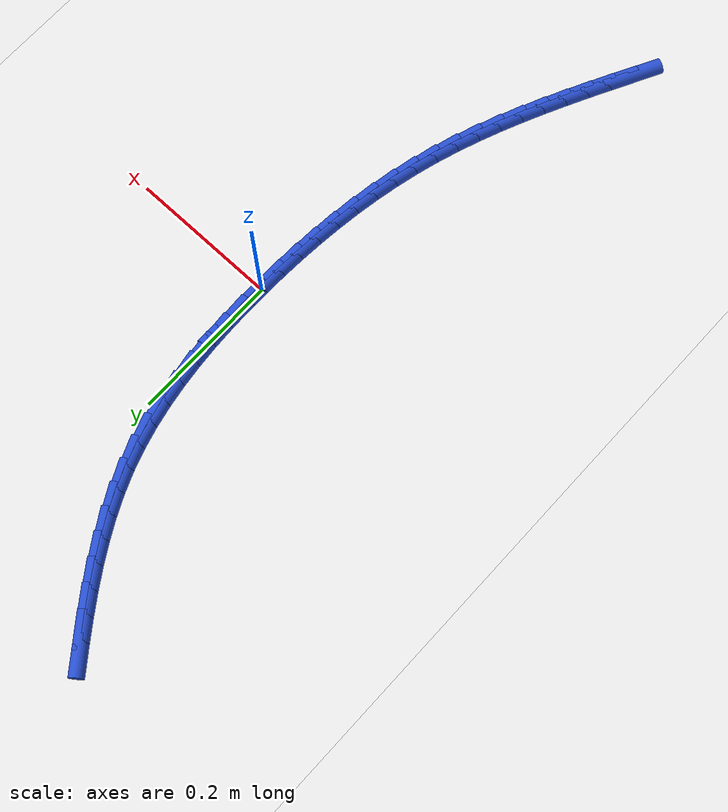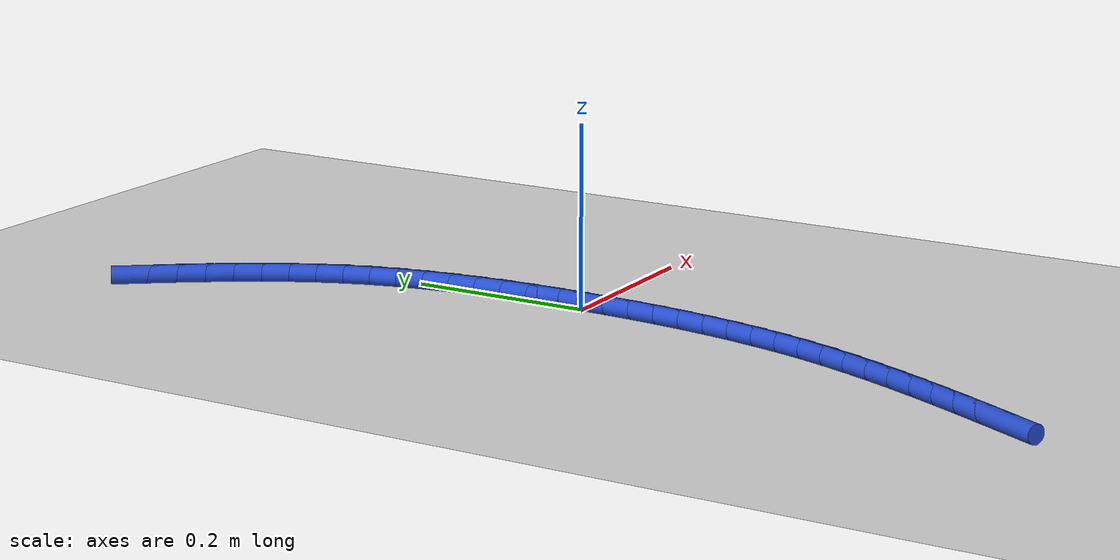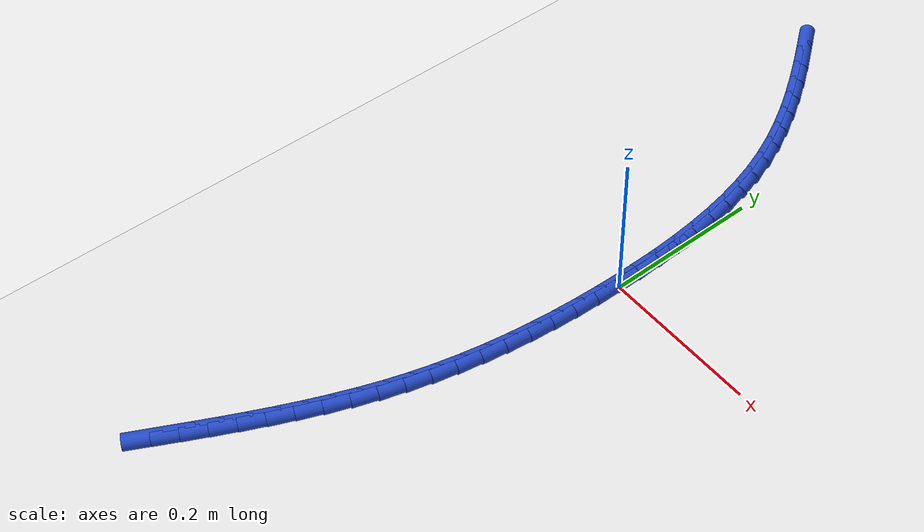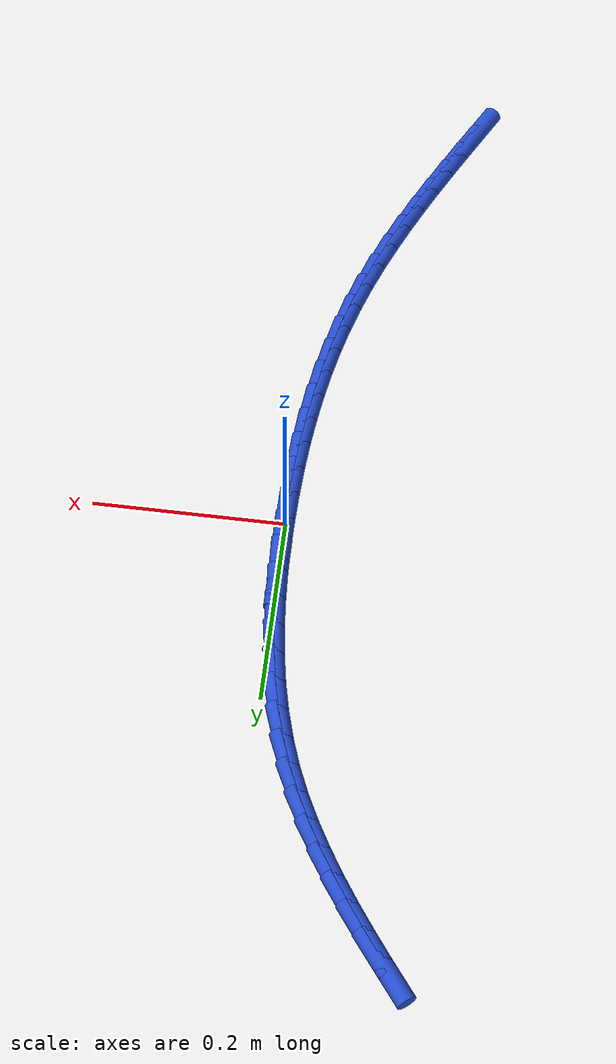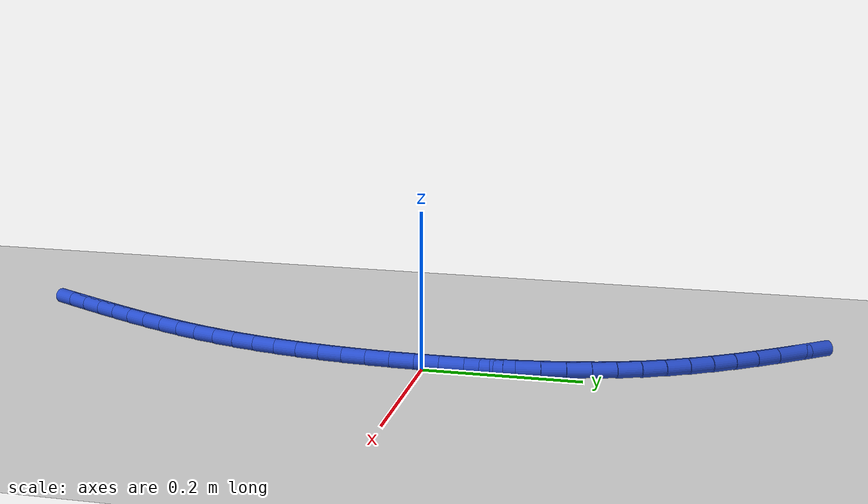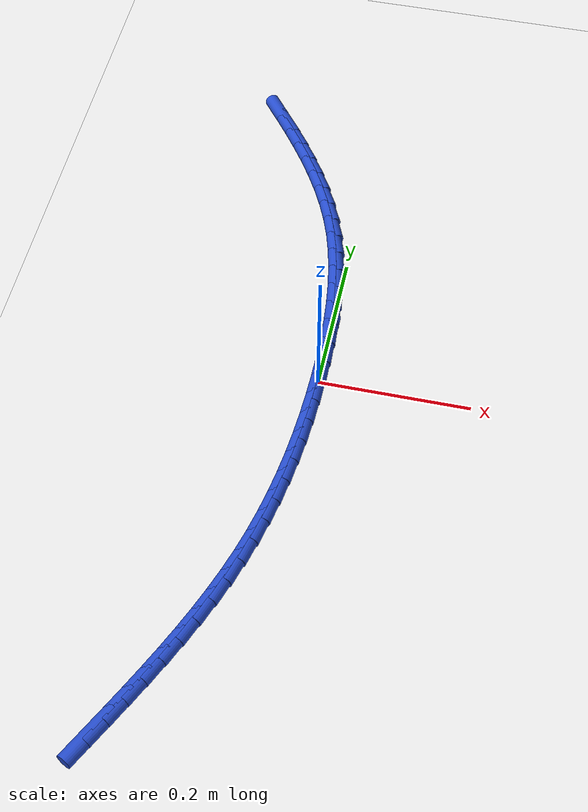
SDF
<sdf version="1.6">
 <world name="default">
  <model name="ground_plane">
   <static>1</static>
   <link name="link">
    <collision name="collision">
     <geometry><plane><normal>0 0 1</normal><size>100 100</size></plane></geometry>
     <surface><friction><ode><mu>100</mu><mu2>50</mu2></ode></friction></surface>
    </collision>
    <visual name="visual">
     <cast_shadows>0</cast_shadows>
     <geometry><plane><normal>0 0 1</normal><size>100 100</size></plane></geometry>
     <material>
      <script><uri>file://media/materials/scripts/gazebo.material</uri><name>Gazebo/WhiteGlow</name></script>
     </material>
    </visual>
   </link>
  </model>
  <model name="line">
   <link name="link_0">
    <pose>1.6479873021779667e-17 0.0 0.01 0 1.57 1.5675752540527133</pose>
    <collision name="collision">
     <geometry><cylinder><radius>0.01</radius><length>0.08</length></cylinder></geometry>
    </collision>
    <visual name="visual">
     <material>
      <script><name>Gazebo/Blue</name><uri>file://media/materials/scripts/gazebo.material</uri></script>
     </material>
     <geometry><cylinder><radius>0.01</radius><length>0.08</length></cylinder></geometry>
    </visual>
   </link>
   <link name="link_1">
    <pose>0.0001011087600426013 0.0313896699816783 0.01 0 1.57 -1.5484223017014453</pose>
    <collision name="collision">
     <geometry><cylinder><radius>0.01</radius><length>0.08</length></cylinder></geometry>
    </collision>
    <visual name="visual">
     <material>
      <script><name>Gazebo/Blue</name><uri>file://media/materials/scripts/gazebo.material</uri></script>
     </material>
     <geometry><cylinder><radius>0.01</radius><length>0.08</length></cylinder></geometry>
    </visual>
   </link>
   <link name="link_2">
    <pose>-0.0006017148387606974 0.06279690738424935 0.01 0 1.57 -1.5186276149639046</pose>
    <collision name="collision">
     <geometry><cylinder><radius>0.01</radius><length>0.08</length></cylinder></geometry>
    </collision>
    <visual name="visual">
     <material>
      <script><name>Gazebo/Blue</name><uri>file://media/materials/scripts/gazebo.material</uri></script>
     </material>
     <geometry><cylinder><radius>0.01</radius><length>0.08</length></cylinder></geometry>
    </visual>
   </link>
   <link name="link_3">
    <pose>-0.0022372068500118043 0.09411851721863422 0.01 0 1.57 -1.484386432581348</pose>
    <collision name="collision">
     <geometry><cylinder><radius>0.01</radius><length>0.08</length></cylinder></geometry>
    </collision>
    <visual name="visual">
     <material>
      <script><name>Gazebo/Blue</name><uri>file://media/materials/scripts/gazebo.material</uri></script>
     </material>
     <geometry><cylinder><radius>0.01</radius><length>0.08</length></cylinder></geometry>
    </visual>
   </link>
   <link name="link_4">
    <pose>-0.004934103327312637 0.12525130449575378 0.01 0 1.57 -1.4454217284860233</pose>
    <collision name="collision">
     <geometry><cylinder><radius>0.01</radius><length>0.08</length></cylinder></geometry>
    </collision>
    <visual name="visual">
     <material>
      <script><name>Gazebo/Blue</name><uri>file://media/materials/scripts/gazebo.material</uri></script>
     </material>
     <geometry><cylinder><radius>0.01</radius><length>0.08</length></cylinder></geometry>
    </visual>
   </link>
   <link name="link_5">
    <pose>-0.008821140324265125 0.15609207422652904 0.01 0 1.57 -1.4014432492507192</pose>
    <collision name="collision">
     <geometry><cylinder><radius>0.01</radius><length>0.08</length></cylinder></geometry>
    </collision>
    <visual name="visual">
     <material>
      <script><name>Gazebo/Blue</name><uri>file://media/materials/scripts/gazebo.material</uri></script>
     </material>
     <geometry><cylinder><radius>0.01</radius><length>0.08</length></cylinder></geometry>
    </visual>
   </link>
   <link name="link_6">
    <pose>-0.01402705389447119 0.18653763142188096 0.01 0 1.57 -1.3521718016188053</pose>
    <collision name="collision">
     <geometry><cylinder><radius>0.01</radius><length>0.08</length></cylinder></geometry>
    </collision>
    <visual name="visual">
     <material>
      <script><name>Gazebo/Blue</name><uri>file://media/materials/scripts/gazebo.material</uri></script>
     </material>
     <geometry><cylinder><radius>0.01</radius><length>0.08</length></cylinder></geometry>
    </visual>
   </link>
   <link name="link_7">
    <pose>-0.020680580091532754 0.21648478109273056 0.01 0 1.57 -1.2973730357408915</pose>
    <collision name="collision">
     <geometry><cylinder><radius>0.01</radius><length>0.08</length></cylinder></geometry>
    </collision>
    <visual name="visual">
     <material>
      <script><name>Gazebo/Blue</name><uri>file://media/materials/scripts/gazebo.material</uri></script>
     </material>
     <geometry><cylinder><radius>0.01</radius><length>0.08</length></cylinder></geometry>
    </visual>
   </link>
   <link name="link_8">
    <pose>-0.028910454969051737 0.24583032824999868 0.01 0 1.57 -1.2369107856390804</pose>
    <collision name="collision">
     <geometry><cylinder><radius>0.01</radius><length>0.08</length></cylinder></geometry>
    </collision>
    <visual name="visual">
     <material>
      <script><name>Gazebo/Blue</name><uri>file://media/materials/scripts/gazebo.material</uri></script>
     </material>
     <geometry><cylinder><radius>0.01</radius><length>0.08</length></cylinder></geometry>
    </visual>
   </link>
   <link name="link_9">
    <pose>-0.038845181325287824 0.2744712218505244 0.01 0 1.57 -1.1738996928790446</pose>
    <collision name="collision">
     <geometry><cylinder><radius>0.01</radius><length>0.08</length></cylinder></geometry>
    </collision>
    <visual name="visual">
     <material>
      <script><name>Gazebo/Blue</name><uri>file://media/materials/scripts/gazebo.material</uri></script>
     </material>
     <geometry><cylinder><radius>0.01</radius><length>0.08</length></cylinder></geometry>
    </visual>
   </link>
   <link name="link_10">
    <pose>-0.05053215916598173 0.3023544607912741 0.01 0 1.57 -1.1163393704208906</pose>
    <collision name="collision">
     <geometry><cylinder><radius>0.01</radius><length>0.08</length></cylinder></geometry>
    </collision>
    <visual name="visual">
     <material>
      <script><name>Gazebo/Blue</name><uri>file://media/materials/scripts/gazebo.material</uri></script>
     </material>
     <geometry><cylinder><radius>0.01</radius><length>0.08</length></cylinder></geometry>
    </visual>
   </link>
   <link name="link_11">
    <pose>-0.06381906367342541 0.3295502976223272 0.01 0 1.57 -1.0657681846072646</pose>
    <collision name="collision">
     <geometry><cylinder><radius>0.01</radius><length>0.08</length></cylinder></geometry>
    </collision>
    <visual name="visual">
     <material>
      <script><name>Gazebo/Blue</name><uri>file://media/materials/scripts/gazebo.material</uri></script>
     </material>
     <geometry><cylinder><radius>0.01</radius><length>0.08</length></cylinder></geometry>
    </visual>
   </link>
   <link name="link_12">
    <pose>-0.07852337432375618 0.3561476191878261 0.01 0 1.57 -1.0223385522766313</pose>
    <collision name="collision">
     <geometry><cylinder><radius>0.01</radius><length>0.08</length></cylinder></geometry>
    </collision>
    <visual name="visual">
     <material>
      <script><name>Gazebo/Blue</name><uri>file://media/materials/scripts/gazebo.material</uri></script>
     </material>
     <geometry><cylinder><radius>0.01</radius><length>0.08</length></cylinder></geometry>
    </visual>
   </link>
   <link name="link_13">
    <pose>-0.09446257059311147 0.38223531233191366 0.01 0 1.57 -0.9860303867190535</pose>
    <collision name="collision">
     <geometry><cylinder><radius>0.01</radius><length>0.08</length></cylinder></geometry>
    </collision>
    <visual name="visual">
     <material>
      <script><name>Gazebo/Blue</name><uri>file://media/materials/scripts/gazebo.material</uri></script>
     </material>
     <geometry><cylinder><radius>0.01</radius><length>0.08</length></cylinder></geometry>
    </visual>
   </link>
   <link name="link_14">
    <pose>-0.11145413195762871 0.4079022638987322 0.01 0 1.57 -0.9567182453364077</pose>
    <collision name="collision">
     <geometry><cylinder><radius>0.01</radius><length>0.08</length></cylinder></geometry>
    </collision>
    <visual name="visual">
     <material>
      <script><name>Gazebo/Blue</name><uri>file://media/materials/scripts/gazebo.material</uri></script>
     </material>
     <geometry><cylinder><radius>0.01</radius><length>0.08</length></cylinder></geometry>
    </visual>
   </link>
   <link name="link_15">
    <pose>-0.12931553789344527 0.4332373607324246 0.01 0 1.57 -0.9342269336689711</pose>
    <collision name="collision">
     <geometry><cylinder><radius>0.01</radius><length>0.08</length></cylinder></geometry>
    </collision>
    <visual name="visual">
     <material>
      <script><name>Gazebo/Blue</name><uri>file://media/materials/scripts/gazebo.material</uri></script>
     </material>
     <geometry><cylinder><radius>0.01</radius><length>0.08</length></cylinder></geometry>
    </visual>
   </link>
   <link name="link_16">
    <pose>-0.14786426787669857 0.45832948967713316 0.01 0 1.57 -0.9183733629863463</pose>
    <collision name="collision">
     <geometry><cylinder><radius>0.01</radius><length>0.08</length></cylinder></geometry>
    </collision>
    <visual name="visual">
     <material>
      <script><name>Gazebo/Blue</name><uri>file://media/materials/scripts/gazebo.material</uri></script>
     </material>
     <geometry><cylinder><radius>0.01</radius><length>0.08</length></cylinder></geometry>
    </visual>
   </link>
   <link name="link_212">
    <pose>-0.15027776145289673 -0.5285766011511801 0.01 0 1.57 1.0912047322475935</pose>
    <collision name="collision">
     <geometry><cylinder><radius>0.01</radius><length>0.08</length></cylinder></geometry>
    </collision>
    <visual name="visual">
     <material>
      <script><name>Gazebo/Blue</name><uri>file://media/materials/scripts/gazebo.material</uri></script>
     </material>
     <geometry><cylinder><radius>0.01</radius><length>0.08</length></cylinder></geometry>
    </visual>
   </link>
   <link name="link_213">
    <pose>-0.1360768299939942 -0.5012719408721027 0.01 0 1.57 1.09843657513021</pose>
    <collision name="collision">
     <geometry><cylinder><radius>0.01</radius><length>0.08</length></cylinder></geometry>
    </collision>
    <visual name="visual">
     <material>
      <script><name>Gazebo/Blue</name><uri>file://media/materials/scripts/gazebo.material</uri></script>
     </material>
     <geometry><cylinder><radius>0.01</radius><length>0.08</length></cylinder></geometry>
    </visual>
   </link>
   <link name="link_214">
    <pose>-0.12202620242921051 -0.4737722740756255 0.01 0 1.57 1.1094618959915643</pose>
    <collision name="collision">
     <geometry><cylinder><radius>0.01</radius><length>0.08</length></cylinder></geometry>
    </collision>
    <visual name="visual">
     <material>
      <script><name>Gazebo/Blue</name><uri>file://media/materials/scripts/gazebo.material</uri></script>
     </material>
     <geometry><cylinder><radius>0.01</radius><length>0.08</length></cylinder></geometry>
    </visual>
   </link>
   <link name="link_215">
    <pose>-0.10825200118781292 -0.44606381994138516 0.01 0 1.57 1.1243332963308357</pose>
    <collision name="collision">
     <geometry><cylinder><radius>0.01</radius><length>0.08</length></cylinder></geometry>
    </collision>
    <visual name="visual">
     <material>
      <script><name>Gazebo/Blue</name><uri>file://media/materials/scripts/gazebo.material</uri></script>
     </material>
     <geometry><cylinder><radius>0.01</radius><length>0.08</length></cylinder></geometry>
    </visual>
   </link>
   <link name="link_216">
    <pose>-0.09488138982712635 -0.41813274424375313 0.01 0 1.57 1.1430973512761045</pose>
    <collision name="collision">
     <geometry><cylinder><radius>0.01</radius><length>0.08</length></cylinder></geometry>
    </collision>
    <visual name="visual">
     <material>
      <script><name>Gazebo/Blue</name><uri>file://media/materials/scripts/gazebo.material</uri></script>
     </material>
     <geometry><cylinder><radius>0.01</radius><length>0.08</length></cylinder></geometry>
    </visual>
   </link>
   <link name="link_217">
    <pose>-0.08204153190447458 -0.3899652127570988 0.01 0 1.57 1.1658190861500608</pose>
    <collision name="collision">
     <geometry><cylinder><radius>0.01</radius><length>0.08</length></cylinder></geometry>
    </collision>
    <visual name="visual">
     <material>
      <script><name>Gazebo/Blue</name><uri>file://media/materials/scripts/gazebo.material</uri></script>
     </material>
     <geometry><cylinder><radius>0.01</radius><length>0.08</length></cylinder></geometry>
    </visual>
   </link>
   <link name="link_218">
    <pose>-0.06985959097718188 -0.3615473912557925 0.01 0 1.57 1.1925738309820701</pose>
    <collision name="collision">
     <geometry><cylinder><radius>0.01</radius><length>0.08</length></cylinder></geometry>
    </collision>
    <visual name="visual">
     <material>
      <script><name>Gazebo/Blue</name><uri>file://media/materials/scripts/gazebo.material</uri></script>
     </material>
     <geometry><cylinder><radius>0.01</radius><length>0.08</length></cylinder></geometry>
    </visual>
   </link>
   <link name="link_219">
    <pose>-0.058462730602572094 -0.33286544551420383 0.01 0 1.57 1.2234368106875948</pose>
    <collision name="collision">
     <geometry><cylinder><radius>0.01</radius><length>0.08</length></cylinder></geometry>
    </collision>
    <visual name="visual">
     <material>
      <script><name>Gazebo/Blue</name><uri>file://media/materials/scripts/gazebo.material</uri></script>
     </material>
     <geometry><cylinder><radius>0.01</radius><length>0.08</length></cylinder></geometry>
    </visual>
   </link>
   <link name="link_220">
    <pose>-0.04797811433797003 -0.3039055413067044 0.01 0 1.57 1.25847006422388</pose>
    <collision name="collision">
     <geometry><cylinder><radius>0.01</radius><length>0.08</length></cylinder></geometry>
    </collision>
    <visual name="visual">
     <material>
      <script><name>Gazebo/Blue</name><uri>file://media/materials/scripts/gazebo.material</uri></script>
     </material>
     <geometry><cylinder><radius>0.01</radius><length>0.08</length></cylinder></geometry>
    </visual>
   </link>
   <link name="link_221">
    <pose>-0.03853290574069957 -0.27465384440766366 0.01 0 1.57 1.297113145639757</pose>
    <collision name="collision">
     <geometry><cylinder><radius>0.01</radius><length>0.08</length></cylinder></geometry>
    </collision>
    <visual name="visual">
     <material>
      <script><name>Gazebo/Blue</name><uri>file://media/materials/scripts/gazebo.material</uri></script>
     </material>
     <geometry><cylinder><radius>0.01</radius><length>0.08</length></cylinder></geometry>
    </visual>
   </link>
   <link name="link_222">
    <pose>-0.03023630592802973 -0.24509991766091238 0.01 0 1.57 1.3354094528191611</pose>
    <collision name="collision">
     <geometry><cylinder><radius>0.01</radius><length>0.08</length></cylinder></geometry>
    </collision>
    <visual name="visual">
     <material>
      <script><name>Gazebo/Blue</name><uri>file://media/materials/scripts/gazebo.material</uri></script>
     </material>
     <geometry><cylinder><radius>0.01</radius><length>0.08</length></cylinder></geometry>
    </visual>
   </link>
   <link name="link_223">
    <pose>-0.02307870623843586 -0.21525579330029213 0.01 0 1.57 1.3716828248998556</pose>
    <collision name="collision">
     <geometry><cylinder><radius>0.01</radius><length>0.08</length></cylinder></geometry>
    </collision>
    <visual name="visual">
     <material>
      <script><name>Gazebo/Blue</name><uri>file://media/materials/scripts/gazebo.material</uri></script>
     </material>
     <geometry><cylinder><radius>0.01</radius><length>0.08</length></cylinder></geometry>
    </visual>
   </link>
   <link name="link_224">
    <pose>-0.017002252606180598 -0.18514262776486354 0.01 0 1.57 1.4058678276267462</pose>
    <collision name="collision">
     <geometry><cylinder><radius>0.01</radius><length>0.08</length></cylinder></geometry>
    </collision>
    <visual name="visual">
     <material>
      <script><name>Gazebo/Blue</name><uri>file://media/materials/scripts/gazebo.material</uri></script>
     </material>
     <geometry><cylinder><radius>0.01</radius><length>0.08</length></cylinder></geometry>
    </visual>
   </link>
   <link name="link_225">
    <pose>-0.011948952209535972 -0.15478160373531707 0.01 0 1.57 1.4379306560964613</pose>
    <collision name="collision">
     <geometry><cylinder><radius>0.01</radius><length>0.08</length></cylinder></geometry>
    </collision>
    <visual name="visual">
     <material>
      <script><name>Gazebo/Blue</name><uri>file://media/materials/scripts/gazebo.material</uri></script>
     </material>
     <geometry><cylinder><radius>0.01</radius><length>0.08</length></cylinder></geometry>
    </visual>
   </link>
   <link name="link_226">
    <pose>-0.00786081222677419 -0.12419390389234358 0.01 0 1.57 1.467860283893703</pose>
    <collision name="collision">
     <geometry><cylinder><radius>0.01</radius><length>0.08</length></cylinder></geometry>
    </collision>
    <visual name="visual">
     <material>
      <script><name>Gazebo/Blue</name><uri>file://media/materials/scripts/gazebo.material</uri></script>
     </material>
     <geometry><cylinder><radius>0.01</radius><length>0.08</length></cylinder></geometry>
    </visual>
   </link>
   <link name="link_227">
    <pose>-0.004679839836167484 -0.09340071091663418 0.01 0 1.57 1.4956641127146517</pose>
    <collision name="collision">
     <geometry><cylinder><radius>0.01</radius><length>0.08</length></cylinder></geometry>
    </collision>
    <visual name="visual">
     <material>
      <script><name>Gazebo/Blue</name><uri>file://media/materials/scripts/gazebo.material</uri></script>
     </material>
     <geometry><cylinder><radius>0.01</radius><length>0.08</length></cylinder></geometry>
    </visual>
   </link>
   <link name="link_228">
    <pose>-0.002348042215988018 -0.0624232074888791 0.01 0 1.57 1.5213637836166682</pose>
    <collision name="collision">
     <geometry><cylinder><radius>0.01</radius><length>0.08</length></cylinder></geometry>
    </collision>
    <visual name="visual">
     <material>
      <script><name>Gazebo/Blue</name><uri>file://media/materials/scripts/gazebo.material</uri></script>
     </material>
     <geometry><cylinder><radius>0.01</radius><length>0.08</length></cylinder></geometry>
    </visual>
   </link>
   <link name="link_229">
    <pose>-0.0008074265445081354 -0.031282576289770964 0.01 0 1.57 1.5449913129228265</pose>
    <collision name="collision">
     <geometry><cylinder><radius>0.01</radius><length>0.08</length></cylinder></geometry>
    </collision>
    <visual name="visual">
     <material>
      <script><name>Gazebo/Blue</name><uri>file://media/materials/scripts/gazebo.material</uri></script>
     </material>
     <geometry><cylinder><radius>0.01</radius><length>0.08</length></cylinder></geometry>
    </visual>
   </link>
   <link name="link_230">
    <pose>1.8214596497756474e-17 2.0816681711721685e-17 0.01 0 1.57 1.5665856452793432</pose>
    <collision name="collision">
     <geometry><cylinder><radius>0.01</radius><length>0.08</length></cylinder></geometry>
    </collision>
    <visual name="visual">
     <material>
      <script><name>Gazebo/Blue</name><uri>file://media/materials/scripts/gazebo.material</uri></script>
     </material>
     <geometry><cylinder><radius>0.01</radius><length>0.08</length></cylinder></geometry>
    </visual>
   </link>
   <link name="link_231">
    <pose>0.00013223023926422052 0.03140333869974282 0.01 0 1.57 -1.5554029930257651</pose>
    <collision name="collision">
     <geometry><cylinder><radius>0.01</radius><length>0.08</length></cylinder></geometry>
    </collision>
    <visual name="visual">
     <material>
      <script><name>Gazebo/Blue</name><uri>file://media/materials/scripts/gazebo.material</uri></script>
     </material>
     <geometry><cylinder><radius>0.01</radius><length>0.08</length></cylinder></geometry>
    </visual>
   </link>
   <link name="link_232">
    <pose>-0.00035274300498775064 0.0629062571287664 0.01 0 1.57 -1.565188946479896</pose>
    <collision name="collision">
     <geometry><cylinder><radius>0.01</radius><length>0.08</length></cylinder></geometry>
    </collision>
    <visual name="visual">
     <material>
      <script><name>Gazebo/Blue</name><uri>file://media/materials/scripts/gazebo.material</uri></script>
     </material>
     <geometry><cylinder><radius>0.01</radius><length>0.08</length></cylinder></geometry>
    </visual>
   </link>
  </model>
 </world>
</sdf>
